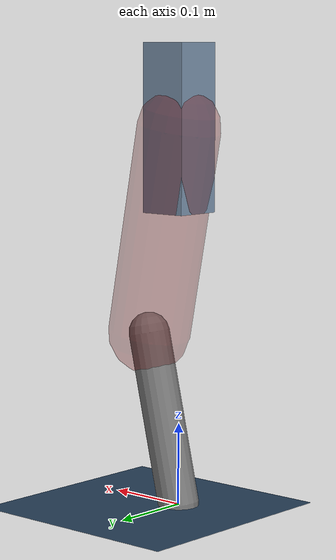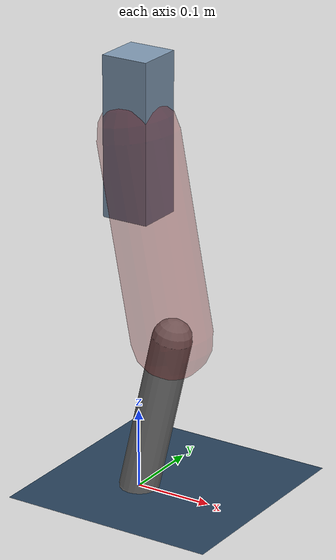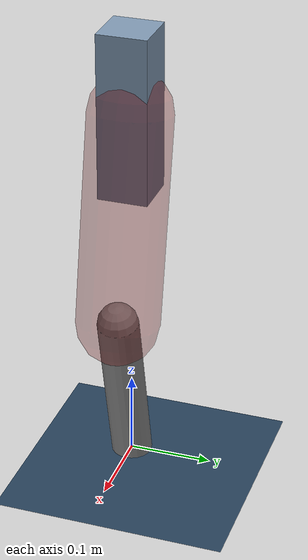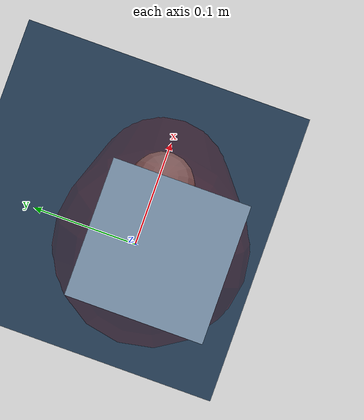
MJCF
<mujoco model="Hopper2D">
	<compiler inertiafromgeom="true" angle="radian" />
	<option timestep="0.001" integrator="implicit" cone="elliptic" solver="Newton" tolerance="1e-10" />

	<default>
		<geom contype="1" conaffinity="1" condim="3" friction="2 0.005 0.0001" solref="0.005 1" />
		<joint limited="true" damping="0.1" />
	</default>

	<asset>
		<texture name="skybox" type="skybox" builtin="gradient" rgb1=".4 .6 .8" rgb2="0 0 0" width="800" height="800" />
		<texture name="grid" type="2d" builtin="checker" rgb1=".1 .2 .3" rgb2=".2 .3 .4" width="300" height="300" mark="edge" markrgb=".2 .3 .4" />
		<material name="ground" texture="grid" texrepeat="1 1" texuniform="true" reflectance="0.1" />
		<material name="leg" rgba="0.5 0.6 0.7 1" />
	</asset>

	<worldbody>

		<geom name="floor" type="plane" size="5 5 0.25" material="ground" />

		<light directional="false" diffuse="0.8 0.8 0.8" specular="0.3 0.3 0.3" pos="0 0 2" dir="0 0 -1" />
		<light mode="targetbodycom" target="base" directional="false" diffuse="0.8 0.8 0.8" specular="0.3 0.3 0.3" pos="0 0 2" dir="0 0 -1" />

		<camera name="fixed" pos="0 -2 1" xyaxes="1 0 0 0 0 1" />
		<camera name="tracking" mode="trackcom" pos="0 -3 1" />

		<body name="root" pos="0 0 0.4554425292187545">
			<joint name="slide_x" type="slide" axis="1 0 0" range="-100 100" />
			<joint name="slide_z" type="slide" axis="0 0 1" range="0 10" />

			<body name="base" pos="0 0 0">
				<geom name="torso" type="box" size="0.03 0.03 0.1" mass="2.035" material="leg" />

				<body name="link1" pos="0 0 0" euler="0 1.3813631234824841 0">
					<joint type="hinge" axis="0 -1 0" pos="0 0 0" name="hinge1" limited="true" range="-3.14 3.14" stiffness="0" damping="0.1" />
					<geom name="thigh" type="capsule" fromto="0 0 0 0.2537243072158803 0 0" size="0.05" rgba="0.5 0 0 0.3" mass="0.8660831987612888" />

					<body name="link2" pos="0.2537243072158803 0 0" euler="0 0.41705622342423654 0">
						<joint type="hinge" axis="0 -1 0" pos="0 0 0" name="hinge2" limited="true" range="-3.14 3.14" stiffness="0" damping="0.1" />
						<geom name="shank" type="capsule" fromto="0 0 0 0.21171822200287418 0 0" size="0.025" mass="0.41074639980258676" />

					</body>
				</body>
			</body>
		</body>
	</worldbody>

	<actuator>
		<motor name="torque1" joint="hinge1" ctrlrange="-23.51602941087225 23.51602941087225" ctrllimited="true" gear="1" />
		<motor name="torque2" joint="hinge2" ctrlrange="-45.54251417885781 45.54251417885781" ctrllimited="true" gear="1" />
	</actuator>
</mujoco>
